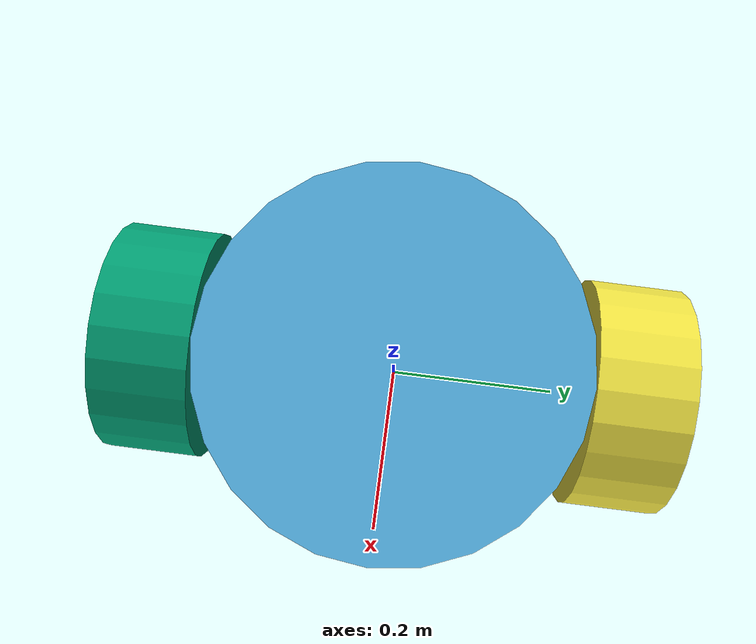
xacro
<?xml version="1.0" encoding="UTF-8"?>
<robot name='turtle' xmlns:xacro="http://ros.org/wiki/xacro">
    <xacro:include filename="$(find collision_detection)/urdf/robot_description_gazebo.xacro"/>

    <link name='base' />
    <link name='body'>
        <visual>
            <origin>
                <xyz>0 0 0</xyz>
                <rpy>0 0 0</rpy>
            </origin>
            <geometry>
                <cylinder radius = '0.2' length='0.2'/>
            </geometry>
        </visual>
        <collision>
            <origin>
                <xyz>0 0 0</xyz>
                <rpy>0 0 0</rpy>
            </origin>
            <geometry>
                <cylinder radius = '0.2' length='0.2'/>
            </geometry>
        </collision>
        <inertial>
            <origin xyz="0.0 0.0 0.0" rpy="0.0 0.0 0.0"/>
            <mass value="1.0"/>
            <inertia ixx="0.0133333333333" ixy="0.0" ixz="0.0" iyy="0.0133333333333" iyz="0.0" izz="0.02"/>
        </inertial>
    </link>

    <joint name='base_body_joint' type='fixed'>
        <parent link='base'/>
        <child link='body'/>
        <origin xyz="0 0 0.15" rpy="0 0 0"/>
    </joint>

    <link name='right_wheel'>
        <visual>
            <origin xyz="0 0 0" rpy="1.5708 0 0"/>
            <geometry>
                <cylinder radius="0.125" length="0.1"/>
            </geometry>
        </visual>
        <collision>
            <origin xyz="0 0 0" rpy="1.5708 0 0"/>
            <geometry>
                <cylinder radius="0.125" length="0.1"/>
            </geometry>
        </collision>
        <inertial>
            <origin xyz="0.0 0.0 0.0" rpy="0.0 0.0 0.0"/>
            <mass value="0.3"/>
            <inertia ixx="2.34375000e-03" ixy="0.0" ixz="5.64485634e-20" iyy="1.42187500e-03" iyz="0.0" izz="1.42187500e-03"/>
        </inertial>

    </link>

    <joint name="body_right_wheel_joint" type='continuous'>
        <parent link='body'/>
        <child link='right_wheel'/>
        <origin xyz="0 -0.251 -0.025" rpy="0 0 0"/>
        <axis xyz="0 1 0"/>
    </joint>

     <link name='left_wheel'>
        <visual>
            <origin xyz="0 0 0" rpy="-1.5708 0 0"/>
            <geometry>
                <cylinder radius="0.125" length="0.1"/>
            </geometry>
        </visual>
        <collision>
            <origin xyz="0 0 0" rpy="-1.5708 0 0"/>
            <geometry>
                <cylinder radius="0.125" length="0.1"/>
            </geometry>
        </collision>
        <inertial>
            <origin xyz="0.0 0.0 0.0" rpy="0.0 0.0 0.0"/>
            <mass value="0.3"/>
            <inertia ixx="2.34375000e-03" ixy="0.0" ixz="5.64485634e-20" iyy="1.42187500e-03" iyz="0.0" izz="1.42187500e-03"/>
        </inertial>
    </link>

     <joint name="body_left_wheel_joint" type='continuous'>
        <parent link='body'/>
        <child link='left_wheel'/>
        <origin xyz="0 0.251 -0.025" rpy="0 0 0"/>
        <axis xyz="0 1 0"/>
    </joint>

     <link name='front_caster'>
        <visual>
          <geometry>
            <sphere radius='0.05'/>
          </geometry>
        </visual>
        <collision>
            <geometry>
              <sphere radius='0.05'/>
            </geometry>
        </collision>
        <inertial>
            <origin xyz="0.0 0.0 0.0" rpy="0.0 0.0 0.0"/>
            <mass value="0.05"/>
            <inertia ixx="5e-05" ixy="0.0" ixz="0.0" iyy="5e-05" iyz="0.0" izz="5e-05"/>
        </inertial>

     </link>

    <joint name='body_front_caster_joint' type='fixed'>
      <parent link='body'/>
      <child link='front_caster'/>
      <origin xyz='0.15 0 -0.1' rpy='0 0 0'/>
    </joint>

     <link name='back_caster'>
        <visual>
          <geometry>
            <sphere radius='0.05'/>
          </geometry>
        </visual>
        <collision>
            <geometry>
              <sphere radius='0.05'/>
            </geometry>
        </collision>
        <inertial>
            <origin xyz="0.0 0.0 0.0" rpy="0.0 0.0 0.0"/>
            <mass value="0.05"/>
            <inertia ixx="5e-05" ixy="0.0" ixz="0.0" iyy="5e-05" iyz="0.0" izz="5e-05"/>
        </inertial>
     </link>

     <joint name='body_back_caster_joint' type='fixed'>
      <parent link='body'/>
      <child link='back_caster'/>
      <origin xyz='-0.15 0 -0.1' rpy='0 0 0'/>
    </joint>
</robot>
